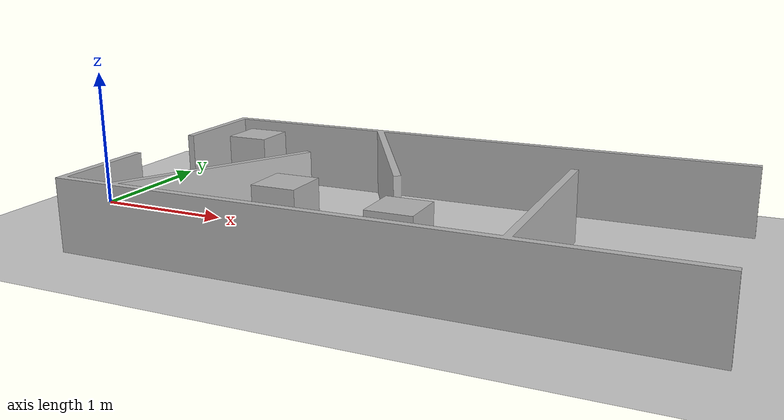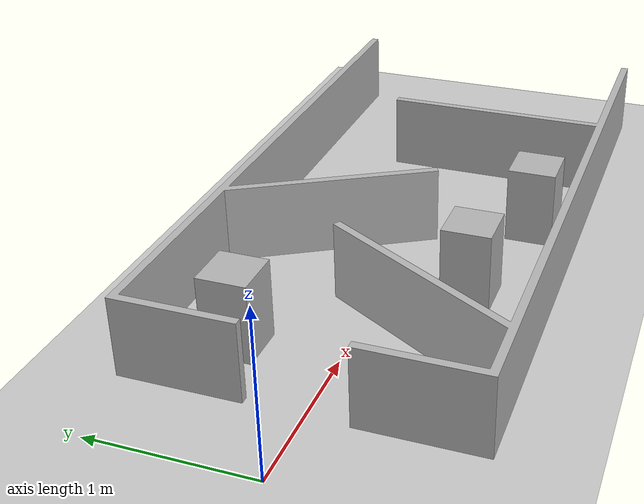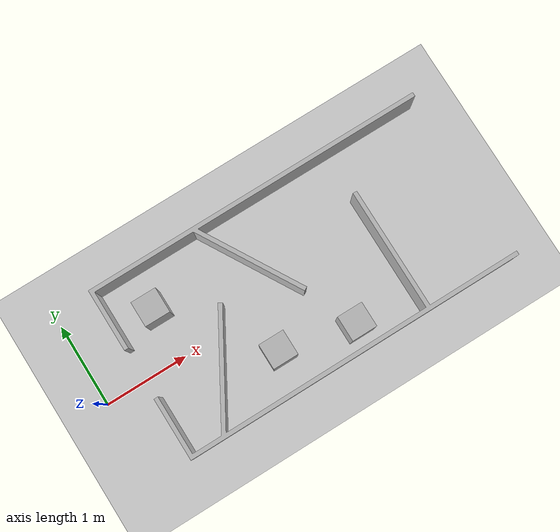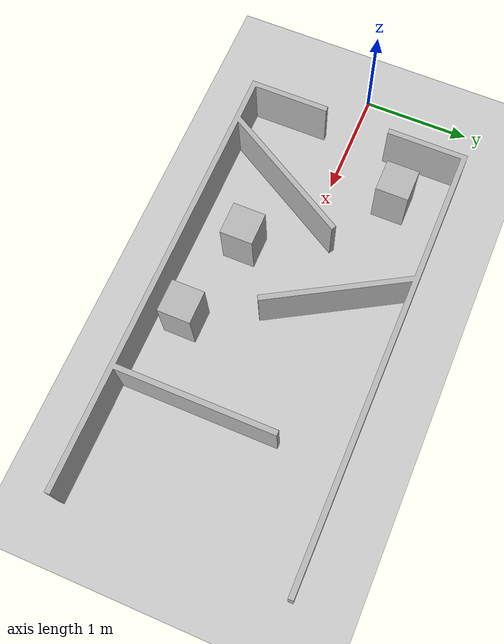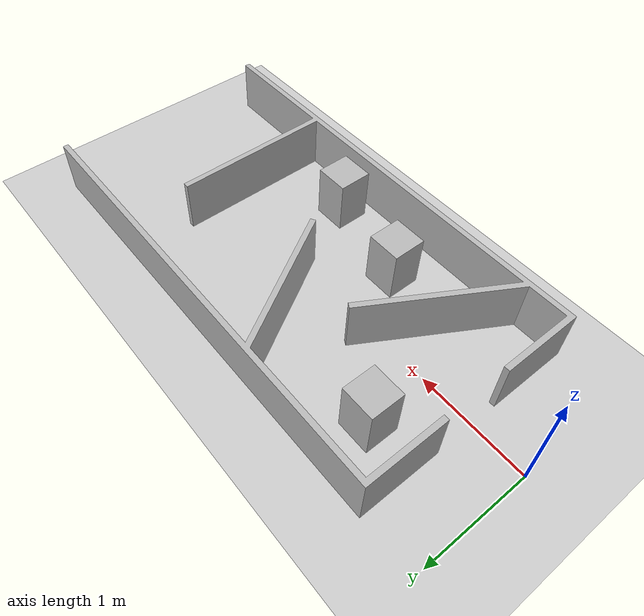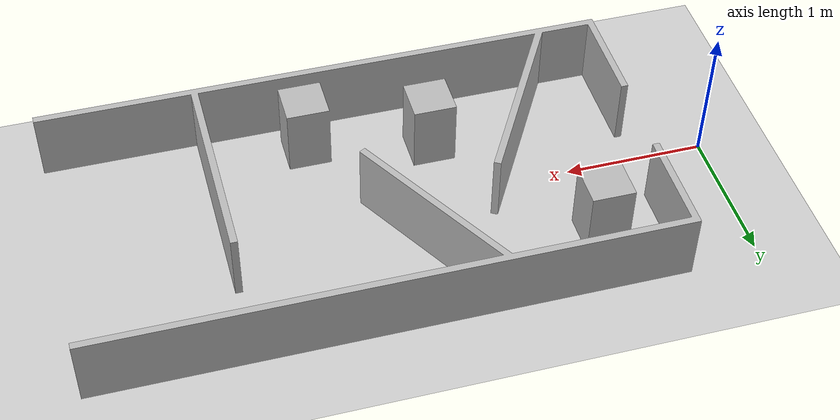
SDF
<?xml version="1.0"?>
<sdf version="1.6">
  <world name="competition_world">
    <scene>
      <grid>true</grid>
    </scene>
    <physics name="1ms" type="ignored">
      <max_step_size>0.003</max_step_size>
      <real_time_factor>1.0</real_time_factor>
    </physics>
    <plugin name="gz::sim::systems::Physics" filename="gz-sim-physics-system" />
    <plugin name="gz::sim::systems::UserCommands" filename="gz-sim-user-commands-system" />
    <plugin name="gz::sim::systems::SceneBroadcaster" filename="gz-sim-scene-broadcaster-system" />
    <plugin name="gz::sim::systems::Contact" filename="gz-sim-contact-system" />
        <!-- Included light -->
    <include>
      <uri>https://fuel.gazebosim.org/1.0/OpenRobotics/models/Sun</uri>
    </include>

    <!-- Included model -->
    <include>
      <uri>https://fuel.gazebosim.org/1.0/OpenRobotics/models/Ground Plane</uri>
    </include>

    <include>
      <uri>model://project3</uri>
      <pose>0.5 -1.0 0.5 1.57 0 1.57</pose>
    </include>

  </world>
</sdf>

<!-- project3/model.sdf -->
<sdf version="1.6">
    <model name="project3">
        <static>true</static>
        <link name="link">
            <pose>0 0 0 1.5708 0 0</pose>
            <visual name="visual">
                <geometry>
                    <mesh>
                        <uri>model://project3/meshes/map-project3-phase2.STL</uri>
                        <scale>0.001 0.001 0.001</scale>
                    </mesh>
                </geometry>
            </visual>
            <collision name="collision">
                <geometry>
                    <mesh>
                        <uri>model://project3/meshes/map-project3-phase2.STL</uri>
                        <scale>0.001 0.001 0.001</scale>
                    </mesh>
                </geometry>
            </collision>
            <inertial>
                <mass>1.0</mass>
                <inertia>
                    <ixx>0.01</ixx>
                    <iyy>0.01</iyy>
                    <izz>0.01</izz>
                    <ixy>0.0</ixy>
                    <ixz>0.0</ixz>
                    <iyz>0.0</iyz>
                </inertia>
            </inertial>
        </link>
    </model>
</sdf>
